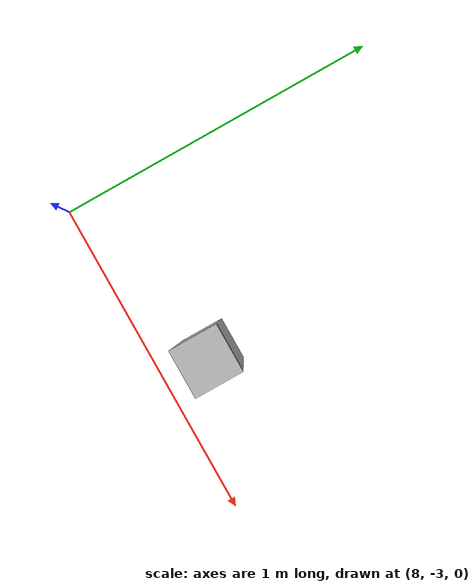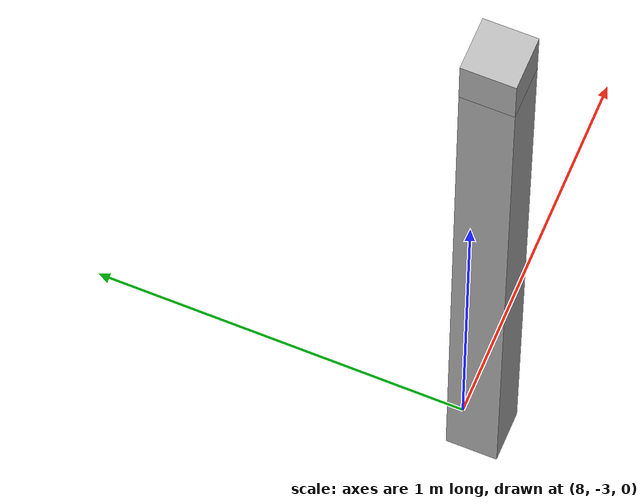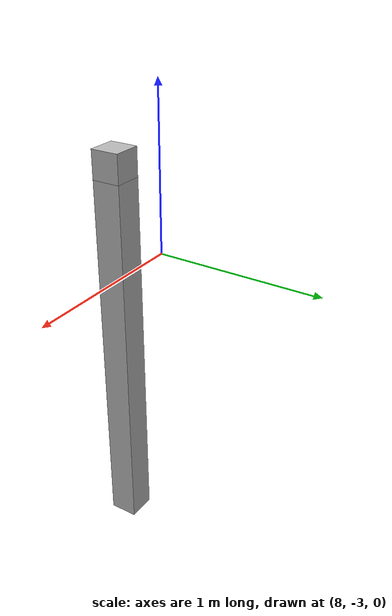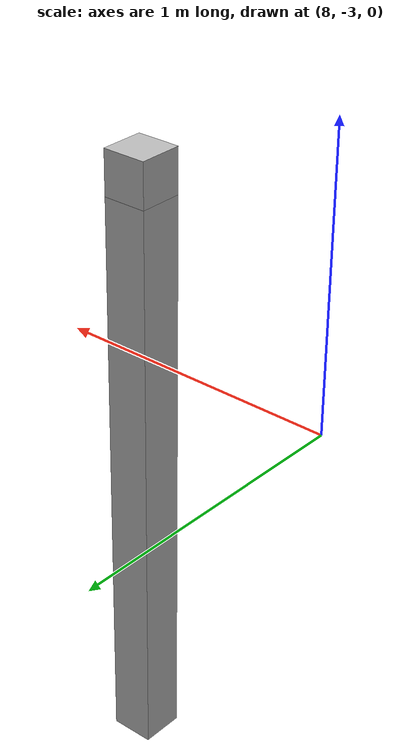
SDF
<sdf version="1.7">
 <world name="default">
  <model name="orthogonal_747_2.000.15_TS">
   <static>1</static>
   <link name="u_link_1_1_7">
    <inertial>
     <mass>1</mass>
     <inertia>
      <ixx>0.166667</ixx>
      <ixy>0</ixy>
      <ixz>0</ixz>
      <iyy>0.166667</iyy>
      <iyz>0</iyz>
      <izz>0.166667</izz>
     </inertia>
    </inertial>
    <pose>15.05 2.15 3.225 0 -0 0</pose>
    <visual name="visual_0">
     <laser_retro>1128</laser_retro>
     <geometry><box><size>0.15 1e-06 0.15</size></box></geometry>
     <material>
      <script><name>Gazebo/Grey</name><uri>file://media/materials/scripts/gazebo.material</uri></script>
      <shader type="pixel"><normal_map>__default__</normal_map></shader>
      <ambient>0.678 0.498 0.659 1</ambient>
      <diffuse>0.7 0.7 0.7 1</diffuse>
      <specular>0.01 0.01 0.01 1</specular>
      <emissive>0 0 0 1</emissive>
     </material>
     <pose>0 -0.075 0 0 -0 0</pose>
     <transparency>1</transparency>
    </visual>
    <visual name="visual_1">
     <laser_retro>1129</laser_retro>
     <geometry><box><size>0.15 1e-06 0.15</size></box></geometry>
     <material>
      <script><name>Gazebo/Grey</name><uri>file://media/materials/scripts/gazebo.material</uri></script>
      <shader type="pixel"><normal_map>__default__</normal_map></shader>
      <ambient>0.447 0.624 0.812 1</ambient>
      <diffuse>0.7 0.7 0.7 1</diffuse>
      <specular>0.01 0.01 0.01 1</specular>
      <emissive>0 0 0 1</emissive>
     </material>
     <pose>0 0.075 0 0 -0 0</pose>
     <transparency>1</transparency>
    </visual>
    <visual name="visual_2">
     <laser_retro>1130</laser_retro>
     <geometry><box><size>0.15 0.15 1e-06</size></box></geometry>
     <material>
      <script><name>Gazebo/Grey</name><uri>file://media/materials/scripts/gazebo.material</uri></script>
      <shader type="pixel"><normal_map>__default__</normal_map></shader>
      <ambient>0.988 0.686 0.243 1</ambient>
      <diffuse>0.7 0.7 0.7 1</diffuse>
      <specular>0.01 0.01 0.01 1</specular>
      <emissive>0 0 0 1</emissive>
     </material>
     <pose>0 0 -0.075 0 -0 0</pose>
     <transparency>1</transparency>
    </visual>
    <visual name="visual_3">
     <laser_retro>1131</laser_retro>
     <geometry><box><size>1e-06 0.15 0.15</size></box></geometry>
     <material>
      <script><name>Gazebo/Grey</name><uri>file://media/materials/scripts/gazebo.material</uri></script>
      <shader type="pixel"><normal_map>__default__</normal_map></shader>
      <ambient>0.988 0.914 0.31 1</ambient>
      <diffuse>0.7 0.7 0.7 1</diffuse>
      <specular>0.01 0.01 0.01 1</specular>
      <emissive>0 0 0 1</emissive>
     </material>
     <pose>0.075 0 0 0 -0 0</pose>
     <transparency>1</transparency>
    </visual>
    <visual name="visual_4">
     <laser_retro>1132</laser_retro>
     <geometry><box><size>0.15 0.15 1e-06</size></box></geometry>
     <material>
      <script><name>Gazebo/Grey</name><uri>file://media/materials/scripts/gazebo.material</uri></script>
      <shader type="pixel"><normal_map>__default__</normal_map></shader>
      <ambient>0.937 0.161 0.161 1</ambient>
      <diffuse>0.7 0.7 0.7 1</diffuse>
      <specular>0.01 0.01 0.01 1</specular>
      <emissive>0 0 0 1</emissive>
     </material>
     <pose>0 0 0.075 0 -0 0</pose>
     <transparency>1</transparency>
    </visual>
    <visual name="visual_5">
     <laser_retro>1133</laser_retro>
     <geometry><box><size>1e-06 0.15 0.15</size></box></geometry>
     <material>
      <script><name>Gazebo/Grey</name><uri>file://media/materials/scripts/gazebo.material</uri></script>
      <shader type="pixel"><normal_map>__default__</normal_map></shader>
      <ambient>0.541 0.886 0.204 1</ambient>
      <diffuse>0.7 0.7 0.7 1</diffuse>
      <specular>0.01 0.01 0.01 1</specular>
      <emissive>0 0 0 1</emissive>
     </material>
     <pose>-0.075 0 0 0 -0 0</pose>
     <transparency>1</transparency>
    </visual>
    <visual name="visual_texture">
     <geometry><box><size>0.149985 0.149985 0.149985</size></box></geometry>
     <material>
      <script>
       <uri>model://BASE_MODELS/simple_block_v2_textured/materials/scripts</uri>
       <uri>model://BASE_MODELS/simple_block_v2_textured/materials/textures</uri>
       <name>metal</name>
      </script>
     </material>
     <laser_retro>1134</laser_retro>
    </visual>
    <collision name="collision">
     <geometry><box><size>0.15 0.15 0.15</size></box></geometry>
     <surface>
      <friction>
       <ode><mu>1</mu><mu2>1</mu2><fdir1>0 0 0</fdir1><slip1>0</slip1><slip2>0</slip2></ode>
       <torsional>
        <coefficient>1</coefficient>
        <patch_radius>0</patch_radius>
        <surface_radius>0</surface_radius>
        <use_patch_radius>1</use_patch_radius>
        <ode><slip>0</slip></ode>
       </torsional>
      </friction>
      <bounce><restitution_coefficient>0</restitution_coefficient><threshold>1e+06</threshold></bounce>
      <contact>
       <collide_without_contact>0</collide_without_contact>
       <collide_without_contact_bitmask>1</collide_without_contact_bitmask>
       <collide_bitmask>1</collide_bitmask>
       <ode>
        <soft_cfm>0</soft_cfm>
        <soft_erp>0.2</soft_erp>
        <kp>1e+13</kp>
        <kd>1</kd>
        <max_vel>0.01</max_vel>
        <min_depth>0</min_depth>
       </ode>
       <bullet>
        <split_impulse>1</split_impulse>
        <split_impulse_penetration_threshold>-0.01</split_impulse_penetration_threshold>
        <soft_cfm>0</soft_cfm>
        <soft_erp>0.2</soft_erp>
        <kp>1e+13</kp>
        <kd>1</kd>
       </bullet>
      </contact>
     </surface>
    </collision>
   </link>
   <link name="z_link_1_1_7">
    <inertial>
     <mass>1</mass>
     <inertia>
      <ixx>0.166667</ixx>
      <ixy>0</ixy>
      <ixz>0</ixz>
      <iyy>0.166667</iyy>
      <iyz>0</iyz>
      <izz>0.166667</izz>
     </inertia>
    </inertial>
    <pose>15.05 2.15 2.15 0 -0 0</pose>
    <visual name="visual_0">
     <laser_retro>1135</laser_retro>
     <geometry><box><size>0.15 1e-06 2</size></box></geometry>
     <material>
      <script><name>Gazebo/Grey</name><uri>file://media/materials/scripts/gazebo.material</uri></script>
      <shader type="pixel"><normal_map>__default__</normal_map></shader>
      <ambient>0.678 0.498 0.659 1</ambient>
      <diffuse>0.7 0.7 0.7 1</diffuse>
      <specular>0.01 0.01 0.01 1</specular>
      <emissive>0 0 0 1</emissive>
     </material>
     <pose>0 -0.075 0 0 -0 0</pose>
     <transparency>1</transparency>
    </visual>
    <visual name="visual_1">
     <laser_retro>1136</laser_retro>
     <geometry><box><size>0.15 1e-06 2</size></box></geometry>
     <material>
      <script><name>Gazebo/Grey</name><uri>file://media/materials/scripts/gazebo.material</uri></script>
      <shader type="pixel"><normal_map>__default__</normal_map></shader>
      <ambient>0.447 0.624 0.812 1</ambient>
      <diffuse>0.7 0.7 0.7 1</diffuse>
      <specular>0.01 0.01 0.01 1</specular>
      <emissive>0 0 0 1</emissive>
     </material>
     <pose>0 0.075 0 0 -0 0</pose>
     <transparency>1</transparency>
    </visual>
    <visual name="visual_2">
     <laser_retro>1137</laser_retro>
     <geometry><box><size>0.15 0.15 1e-06</size></box></geometry>
     <material>
      <script><name>Gazebo/Grey</name><uri>file://media/materials/scripts/gazebo.material</uri></script>
      <shader type="pixel"><normal_map>__default__</normal_map></shader>
      <ambient>0.988 0.686 0.243 1</ambient>
      <diffuse>0.7 0.7 0.7 1</diffuse>
      <specular>0.01 0.01 0.01 1</specular>
      <emissive>0 0 0 1</emissive>
     </material>
     <pose>0 0 -1 0 -0 0</pose>
     <transparency>1</transparency>
    </visual>
    <visual name="visual_3">
     <laser_retro>1138</laser_retro>
     <geometry><box><size>1e-06 0.15 2</size></box></geometry>
     <material>
      <script><name>Gazebo/Grey</name><uri>file://media/materials/scripts/gazebo.material</uri></script>
      <shader type="pixel"><normal_map>__default__</normal_map></shader>
      <ambient>0.988 0.914 0.31 1</ambient>
      <diffuse>0.7 0.7 0.7 1</diffuse>
      <specular>0.01 0.01 0.01 1</specular>
      <emissive>0 0 0 1</emissive>
     </material>
     <pose>0.075 0 0 0 -0 0</pose>
     <transparency>1</transparency>
    </visual>
    <visual name="visual_4">
     <laser_retro>1139</laser_retro>
     <geometry><box><size>0.15 0.15 1e-06</size></box></geometry>
     <material>
      <script><name>Gazebo/Grey</name><uri>file://media/materials/scripts/gazebo.material</uri></script>
      <shader type="pixel"><normal_map>__default__</normal_map></shader>
      <ambient>0.937 0.161 0.161 1</ambient>
      <diffuse>0.7 0.7 0.7 1</diffuse>
      <specular>0.01 0.01 0.01 1</specular>
      <emissive>0 0 0 1</emissive>
     </material>
     <pose>0 0 1 0 -0 0</pose>
     <transparency>1</transparency>
    </visual>
    <visual name="visual_5">
     <laser_retro>1140</laser_retro>
     <geometry><box><size>1e-06 0.15 2</size></box></geometry>
     <material>
      <script><name>Gazebo/Grey</name><uri>file://media/materials/scripts/gazebo.material</uri></script>
      <shader type="pixel"><normal_map>__default__</normal_map></shader>
      <ambient>0.541 0.886 0.204 1</ambient>
      <diffuse>0.7 0.7 0.7 1</diffuse>
      <specular>0.01 0.01 0.01 1</specular>
      <emissive>0 0 0 1</emissive>
     </material>
     <pose>-0.075 0 0 0 -0 0</pose>
     <transparency>1</transparency>
    </visual>
    <visual name="visual_texture">
     <geometry><box><size>0.149985 0.149985 1.9998</size></box></geometry>
     <material>
      <script>
       <uri>model://BASE_MODELS/simple_block_v2_textured/materials/scripts</uri>
       <uri>model://BASE_MODELS/simple_block_v2_textured/materials/textures</uri>
       <name>metal</name>
      </script>
     </material>
     <laser_retro>1141</laser_retro>
    </visual>
    <collision name="collision">
     <geometry><box><size>0.15 0.15 2</size></box></geometry>
     <surface>
      <friction>
       <ode><mu>1</mu><mu2>1</mu2><fdir1>0 0 0</fdir1><slip1>0</slip1><slip2>0</slip2></ode>
       <torsional>
        <coefficient>1</coefficient>
        <patch_radius>0</patch_radius>
        <surface_radius>0</surface_radius>
        <use_patch_radius>1</use_patch_radius>
        <ode><slip>0</slip></ode>
       </torsional>
      </friction>
      <bounce><restitution_coefficient>0</restitution_coefficient><threshold>1e+06</threshold></bounce>
      <contact>
       <collide_without_contact>0</collide_without_contact>
       <collide_without_contact_bitmask>1</collide_without_contact_bitmask>
       <collide_bitmask>1</collide_bitmask>
       <ode>
        <soft_cfm>0</soft_cfm>
        <soft_erp>0.2</soft_erp>
        <kp>1e+13</kp>
        <kd>1</kd>
        <max_vel>0.01</max_vel>
        <min_depth>0</min_depth>
       </ode>
       <bullet>
        <split_impulse>1</split_impulse>
        <split_impulse_penetration_threshold>-0.01</split_impulse_penetration_threshold>
        <soft_cfm>0</soft_cfm>
        <soft_erp>0.2</soft_erp>
        <kp>1e+13</kp>
        <kd>1</kd>
       </bullet>
      </contact>
     </surface>
    </collision>
   </link>
   <pose>-6.47624 -5 -2.5 0 -0 0</pose>
  </model>
 </world>
</sdf>
